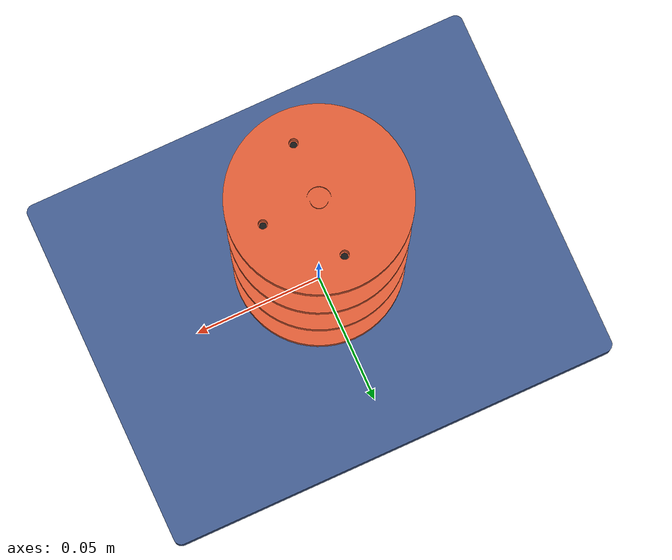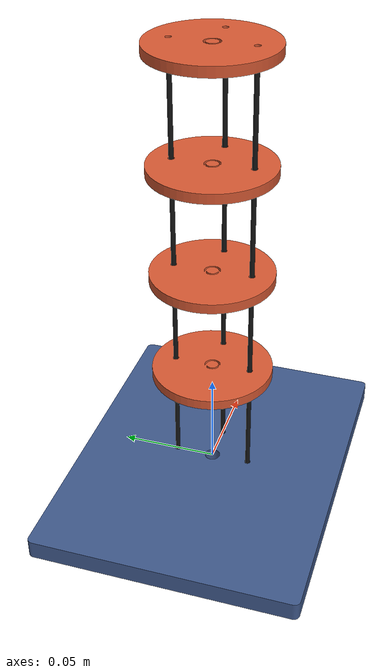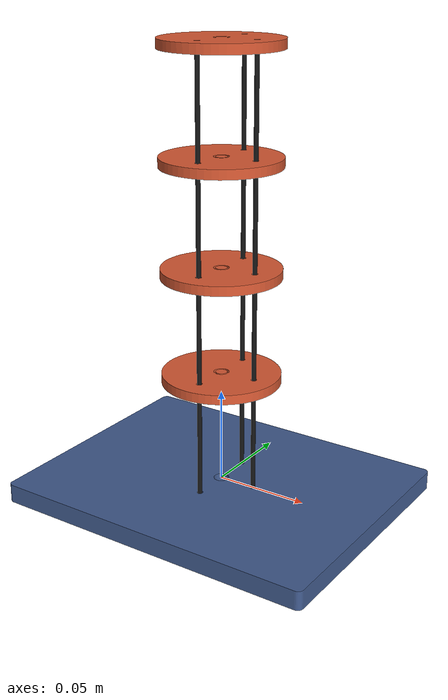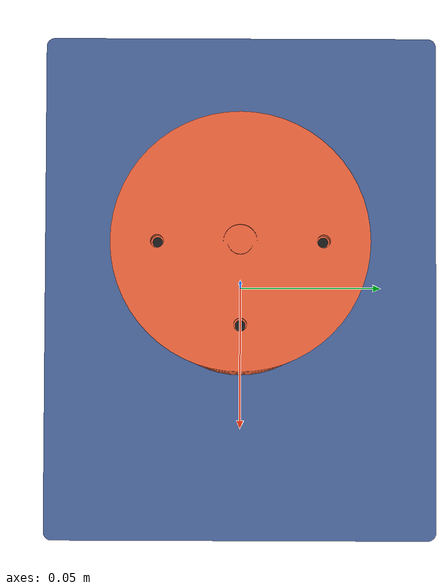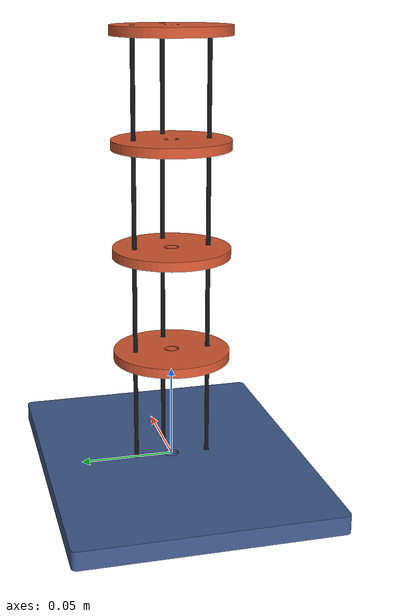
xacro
<?xml version="1.0"?>
<robot name="cable_robot" xmlns:xacro="http://www.ros.org/wiki/xacro">

  <xacro:property name="mesh_dir" value="package://cable_robot_description/meshes"/>
  <xacro:property name="mesh_scale" value="0.001"/>
  <xacro:property name="segment_spacing" value="0.05675"/>
  <xacro:property name="cable_radius_offset" value="0.02"/>
  <xacro:property name="cable_radius" value="0.0012"/>
  <xacro:property name="cable_length" value="0.240"/>
  <xacro:property name="cable_start_z" value="-0.01"/>
  <xacro:property name="cable_travel" value="0.08"/>
  <xacro:property name="base_cable_section_length" value="${segment_spacing - cable_start_z}"/>
  <xacro:property name="deg_to_rad" value="0.017453292519943295"/>
  <xacro:property name="cable_1_angle_deg" value="90.0"/>
  <xacro:property name="cable_2_angle_deg" value="-90.0"/>
  <xacro:property name="cable_3_angle_deg" value="0"/>
  <xacro:property name="cable_1_angle" value="${cable_1_angle_deg * deg_to_rad}"/>
  <xacro:property name="cable_2_angle" value="${cable_2_angle_deg * deg_to_rad}"/>
  <xacro:property name="cable_3_angle" value="${cable_3_angle_deg * deg_to_rad}"/>

  <material name="base_color">
    <color rgba="0.25 0.35 0.55 1.0"/>
  </material>
  <material name="platform_color">
    <color rgba="0.85 0.35 0.20 1.0"/>
  </material>
  <material name="cable_color">
    <color rgba="0.08 0.08 0.08 1.0"/>
  </material>

  <xacro:macro name="segment_stage" params="segment_name parent bend_x_joint bend_y_joint z">
    <link name="${segment_name}_bend_x_link"/>

    <joint name="${bend_x_joint}" type="revolute">
      <parent link="${parent}"/>
      <child link="${segment_name}_bend_x_link"/>
      <origin xyz="0 0 0" rpy="0 0 0"/>
      <axis xyz="1 0 0"/>
      <limit lower="-1.57" upper="1.57" effort="20.0" velocity="1.0"/>
    </joint>

    <link name="${segment_name}_bend_y_link"/>

    <joint name="${bend_y_joint}" type="revolute">
      <parent link="${segment_name}_bend_x_link"/>
      <child link="${segment_name}_bend_y_link"/>
      <origin xyz="0 0 0" rpy="0 0 0"/>
      <axis xyz="0 1 0"/>
      <limit lower="-1.57" upper="1.57" effort="20.0" velocity="1.0"/>
    </joint>

    <link name="${segment_name}">
      <visual>
        <origin xyz="0 0 0" rpy="0 0 0"/>
        <geometry>
          <mesh filename="${mesh_dir}/segment.stl" scale="${mesh_scale} ${mesh_scale} ${mesh_scale}"/>
        </geometry>
        <material name="platform_color"/>
      </visual>
    </link>

    <joint name="${segment_name}_placement_joint" type="fixed">
      <parent link="${segment_name}_bend_y_link"/>
      <child link="${segment_name}"/>
      <origin xyz="0 0 ${z}" rpy="0 0 0"/>
    </joint>
  </xacro:macro>

  <xacro:macro name="cable_link" params="name joint_name angle">
    <link name="${name}_anchor_link"/>

    <joint name="${joint_name}" type="prismatic">
      <parent link="${name}_anchor_link"/>
      <child link="${name}"/>
      <origin xyz="0 0 0" rpy="0 0 0"/>
      <axis xyz="0 0 1"/>
      <limit lower="0.0" upper="${cable_travel}" effort="50.0" velocity="0.1"/>
    </joint>

    <link name="${name}">
    </link>
MAX_VAL
    <joint name="base_to_${name}_anchor" type="fixed">
      <parent link="base_link"/>
      <child link="${name}_anchor_link"/>
      <origin
        xyz="${cable_radius_offset * cos(angle)} ${cable_radius_offset * sin(angle)} ${cable_start_z}"
        rpy="0 0 0"/>
    </joint>
  </xacro:macro>

  <xacro:macro name="cable_section" params="name parent angle z_mid length">
    <link name="${name}">
      <visual>
        <origin xyz="0 0 ${z_mid}" rpy="0 0 0"/>
        <geometry>
          <cylinder radius="${cable_radius}" length="${length}"/>
        </geometry>
        <material name="cable_color"/>
      </visual>
    </link>

    <joint name="${parent}_to_${name}" type="fixed">
      <parent link="${parent}"/>
      <child link="${name}"/>
      <origin
        xyz="${cable_radius_offset * cos(angle)} ${cable_radius_offset * sin(angle)} 0"
        rpy="0 0 0"/>
    </joint>
  </xacro:macro>

  <link name="world"/>

  <link name="base_link">
    <visual>
      <origin xyz="0 0 0" rpy="3.14159 0 0"/>
      <geometry>
        <mesh filename="${mesh_dir}/base.stl" scale="${mesh_scale} ${mesh_scale} ${mesh_scale}"/>
      </geometry>
      <material name="base_color"/>
    </visual>
  </link>

  <joint name="world_to_base" type="fixed">
    <parent link="world"/>
    <child link="base_link"/>
  </joint>

  <xacro:segment_stage
    segment_name="segment_1_link"
    parent="base_link"
    bend_x_joint="joint_bend_x"
    bend_y_joint="joint_bend_y"
    z="${segment_spacing}"/>
  <xacro:segment_stage
    segment_name="segment_2_link"
    parent="segment_1_link"
    bend_x_joint="joint_bend_x_1"
    bend_y_joint="joint_bend_y_1"
    z="${segment_spacing}"/>
  <xacro:segment_stage
    segment_name="segment_3_link"
    parent="segment_2_link"
    bend_x_joint="joint_bend_x_2"
    bend_y_joint="joint_bend_y_2"
    z="${segment_spacing}"/>
  <xacro:segment_stage
    segment_name="segment_4_link"
    parent="segment_3_link"
    bend_x_joint="joint_bend_x_3"
    bend_y_joint="joint_bend_y_3"
    z="${segment_spacing}"/>

  <xacro:cable_link
    name="cable_1_link"
    joint_name="cable_1_joint"
    angle="${cable_1_angle}"/>
  <xacro:cable_section
    name="cable_1_base_section"
    parent="base_link"
    angle="${cable_1_angle}"
    z_mid="${(cable_start_z + segment_spacing) / 2.0}"
    length="${base_cable_section_length}"/>
  <xacro:cable_section
    name="cable_1_section_1"
    parent="segment_1_link"
    angle="${cable_1_angle}"
    z_mid="${segment_spacing / 2.0}"
    length="${segment_spacing}"/>
  <xacro:cable_section
    name="cable_1_section_2"
    parent="segment_2_link"
    angle="${cable_1_angle}"
    z_mid="${segment_spacing / 2.0}"
    length="${segment_spacing}"/>
  <xacro:cable_section
    name="cable_1_section_3"
    parent="segment_3_link"
    angle="${cable_1_angle}"
    z_mid="${segment_spacing / 2.0}"
    length="${segment_spacing}"/>
  <xacro:cable_link
    name="cable_2_link"
    joint_name="cable_2_joint"
    angle="${cable_2_angle}"/>
  <xacro:cable_section
    name="cable_2_base_section"
    parent="base_link"
    angle="${cable_2_angle}"
    z_mid="${(cable_start_z + segment_spacing) / 2.0}"
    length="${base_cable_section_length}"/>
  <xacro:cable_section
    name="cable_2_section_1"
    parent="segment_1_link"
    angle="${cable_2_angle}"
    z_mid="${segment_spacing / 2.0}"
    length="${segment_spacing}"/>
  <xacro:cable_section
    name="cable_2_section_2"
    parent="segment_2_link"
    angle="${cable_2_angle}"
    z_mid="${segment_spacing / 2.0}"
    length="${segment_spacing}"/>
  <xacro:cable_section
    name="cable_2_section_3"
    parent="segment_3_link"
    angle="${cable_2_angle}"
    z_mid="${segment_spacing / 2.0}"
    length="${segment_spacing}"/>
  <xacro:cable_link
    name="cable_3_link"
    joint_name="cable_3_joint"
    angle="${cable_3_angle}"/>
  <xacro:cable_section
    name="cable_3_base_section"
    parent="base_link"
    angle="${cable_3_angle}"
    z_mid="${(cable_start_z + segment_spacing) / 2.0}"
    length="${base_cable_section_length}"/>
  <xacro:cable_section
    name="cable_3_section_1"
    parent="segment_1_link"
    angle="${cable_3_angle}"
    z_mid="${segment_spacing / 2.0}"
    length="${segment_spacing}"/>
  <xacro:cable_section
    name="cable_3_section_2"
    parent="segment_2_link"
    angle="${cable_3_angle}"
    z_mid="${segment_spacing / 2.0}"
    length="${segment_spacing}"/>
  <xacro:cable_section
    name="cable_3_section_3"
    parent="segment_3_link"
    angle="${cable_3_angle}"
    z_mid="${segment_spacing / 2.0}"
    length="${segment_spacing}"/>

  <ros2_control name="CableRobotHardware" type="system">
    <hardware>
      <plugin>cable_robot_hardware/CableRobotHardware</plugin>
      <param name="port">/dev/ttyACM0</param>
      <param name="baud">9600</param>
      <param name="cable_speed">0.026</param>
    </hardware>

    <joint name="cable_1_joint">
      <command_interface name="velocity"/>
      <state_interface name="position">
        <param name="initial_value">0.0</param>
      </state_interface>
    </joint>

    <joint name="cable_2_joint">
      <command_interface name="velocity"/>
      <state_interface name="position">
        <param name="initial_value">0.0</param>
      </state_interface>
    </joint>

    <joint name="cable_3_joint">
      <command_interface name="velocity"/>
      <state_interface name="position">
        <param name="initial_value">0.0</param>
      </state_interface>
    </joint>
  </ros2_control>
</robot>
